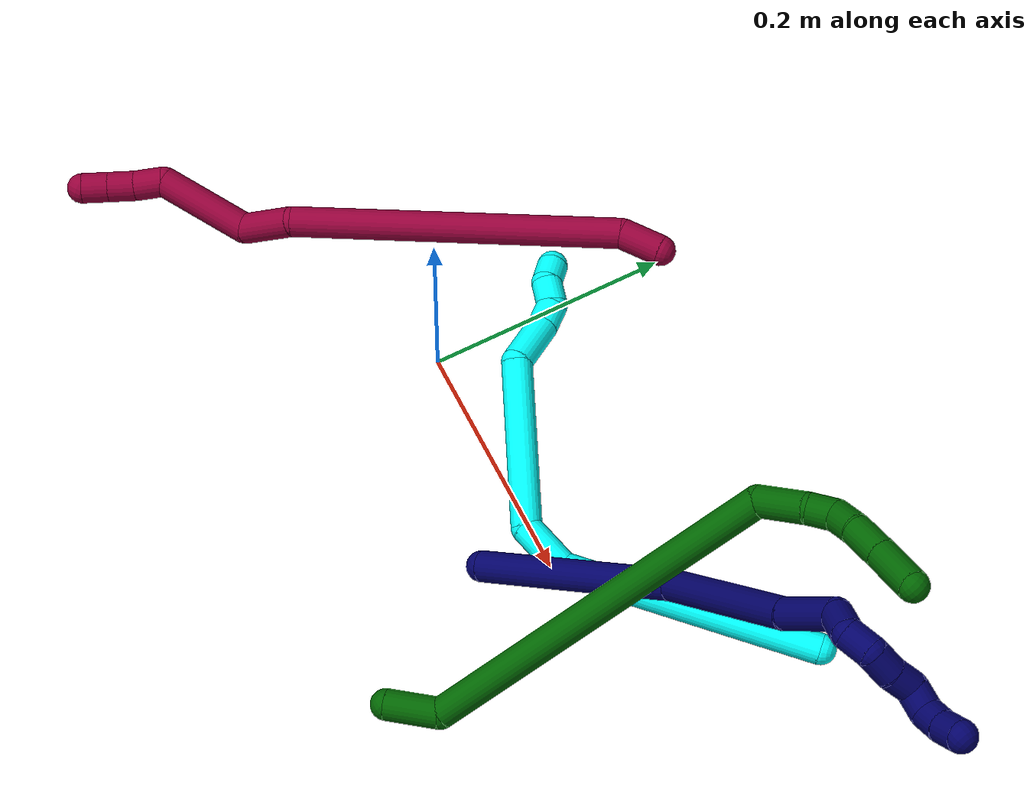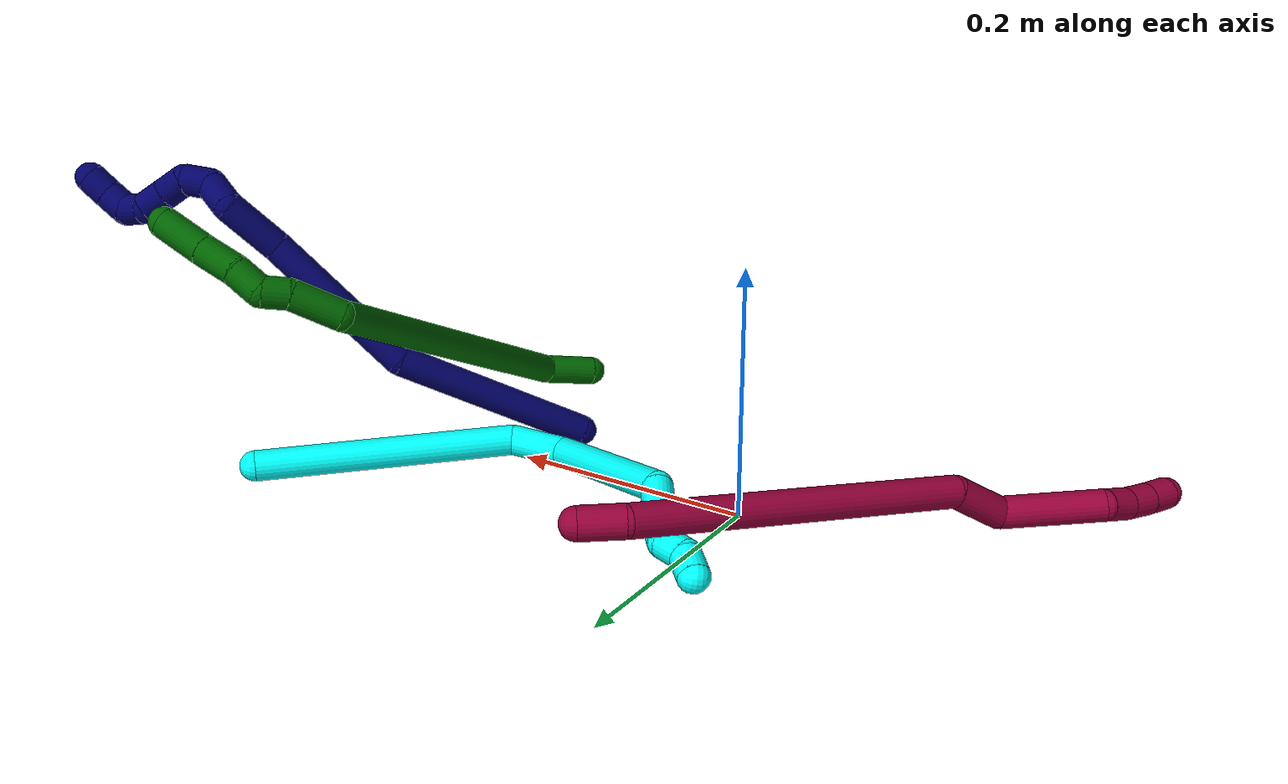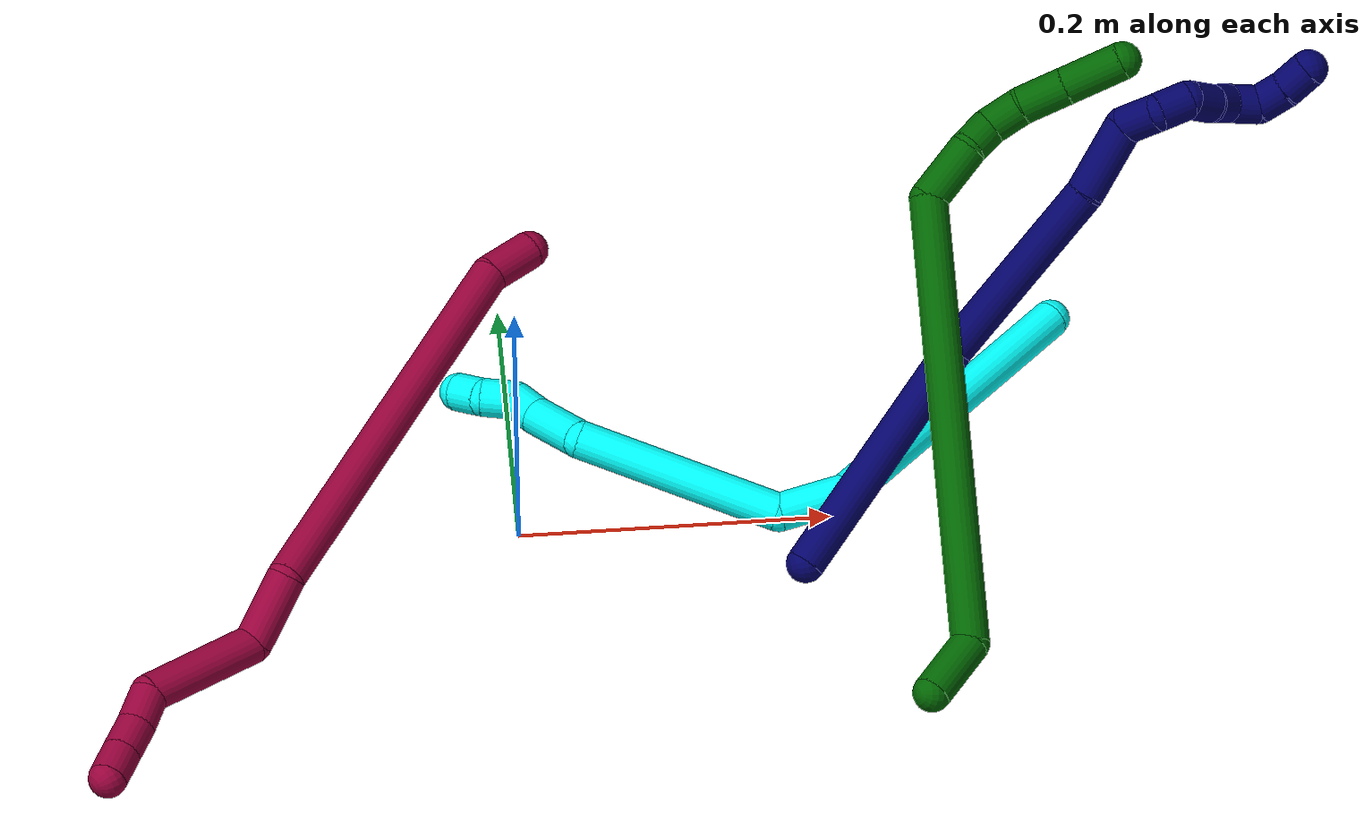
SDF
<sdf version="1.7">
 <world name="default">
  <model name="photoneo_s_sensor">
   <static>1</static>
   <pose>0 0 2 1.57079 1.57079 3.14159</pose>
   <link name="link">
    <inertial><mass>0.1</mass></inertial>
    <sensor name="sensor" type="depth">
     <update_rate>30</update_rate>
     <camera>
      <horizontal_fov>1.22</horizontal_fov>
      <image><width>1920</width><height>1200</height><format>B8G8R8</format></image>
      <clip><near>0.1</near><far>4</far></clip>
      <depth_camera><output>points</output></depth_camera>
     </camera>
     <plugin name="camera_plugin" filename="libgazebo_ros_depth_camera.so">
      <baseline>0.2</baseline>
      <alwaysOn>1</alwaysOn>
      <updateRate>0.0</updateRate>
      <cameraName>camera_ir</cameraName>
      <imageTopicName>/camera/color/image_raw</imageTopicName>
      <cameraInfoTopicName>/camera/color/camera_info</cameraInfoTopicName>
      <depthImageTopicName>/camera/depth/image_raw</depthImageTopicName>
      <depthImageCameraInfoTopicName>/camera/depth/camera_info</depthImageCameraInfoTopicName>
      <pointCloudTopicName>/camera/depth/points</pointCloudTopicName>
      <frameName>fr_optical</frameName>
      <pointCloudCutoff>0.1</pointCloudCutoff>
      <pointCloudCutoffMax>2.0</pointCloudCutoffMax>
      <distortionK1>0</distortionK1>
      <distortionK2>0</distortionK2>
      <distortionK3>0</distortionK3>
      <distortionT1>0</distortionT1>
      <distortionT2>0</distortionT2>
      <CxPrime>0</CxPrime>
      <Cx>0</Cx>
      <Cy>0</Cy>
      <focalLength>0</focalLength>
      <hackBaseline>0</hackBaseline>
     </plugin>
    </sensor>
   </link>
  </model>
  <model name="bin">
   <static>1</static>
   <link name="bottom">
    <collision name="collision-bottom">
     <pose>0 0 -0.01 0 -0 0</pose>
     <geometry><box><size>0.8 0.6 0.02</size></box></geometry>
     <surface>
      <friction><ode><mu>100</mu><mu2>100</mu2></ode></friction>
      <contact><collide_bitmask>65535</collide_bitmask></contact>
     </surface>
    </collision>
   </link>
   <link name="west_wall">
    <collision name="collision-west_wall">
     <pose>-0.41 0 0.1 0 -0 0</pose>
     <geometry><box><size>0.02 0.6 0.2</size></box></geometry>
     <surface>
      <friction><ode><mu>100</mu><mu2>100</mu2></ode></friction>
      <contact><collide_bitmask>65535</collide_bitmask></contact>
     </surface>
    </collision>
   </link>
   <link name="east_wall">
    <collision name="collision-east_wall">
     <pose>0.41 0 0.1 0 -0 0</pose>
     <geometry><box><size>0.02 0.6 0.2</size></box></geometry>
     <surface>
      <friction><ode><mu>100</mu><mu2>100</mu2></ode></friction>
      <contact><collide_bitmask>65535</collide_bitmask></contact>
     </surface>
    </collision>
   </link>
   <link name="south_wall">
    <collision name="collision-south_wall">
     <pose>0 -0.31 0.1 0 -0 0</pose>
     <geometry><box><size>0.8 0.02 0.2</size></box></geometry>
     <surface>
      <friction><ode><mu>100</mu><mu2>100</mu2></ode></friction>
      <contact><collide_bitmask>65535</collide_bitmask></contact>
     </surface>
    </collision>
   </link>
   <link name="north_wall">
    <collision name="collision-north_wall">
     <pose>0 0.31 0.1 0 -0 0</pose>
     <geometry><box><size>0.8 0.02 0.2</size></box></geometry>
     <surface>
      <friction><ode><mu>100</mu><mu2>100</mu2></ode></friction>
      <contact><collide_bitmask>65535</collide_bitmask></contact>
     </surface>
    </collision>
   </link>
  </model>
  <model name="3">
   <static>0</static>
   <link name="3">
    <collision name="collision-cylinder-e_1_1_4">
     <pose>-0.011539 -0.014302 -0.103089 3.00373 -0.110418 -1.35009</pose>
     <geometry><cylinder><radius>0.0125</radius><length>0.209428</length></cylinder></geometry>
     <surface>
      <friction><ode><mu>1.16</mu><mu2>1.16</mu2><slip1>0</slip1><slip2>0</slip2></ode></friction>
      <contact><ode><kp>1e+06</kp><kd>1</kd><max_vel>0</max_vel><min_depth>0.001</min_depth></ode></contact>
     </surface>
    </collision>
    <visual name="visual-cylinder-e_1_1_4">
     <pose>-0.011539 -0.014302 -0.103089 3.00373 -0.110418 -1.35009</pose>
     <geometry><cylinder><radius>0.0125</radius><length>0.209428</length></cylinder></geometry>
     <material><ambient>0.003922 1 0.996078 1</ambient></material>
    </visual>
    <collision name="collision-cylinder-e_2_4_5">
     <pose>-0.03074 -0.02023 -0.225763 -2.73748 -0.345306 1.41049</pose>
     <geometry><cylinder><radius>0.0125</radius><length>0.045272</length></cylinder></geometry>
     <surface>
      <friction><ode><mu>1.16</mu><mu2>1.16</mu2><slip1>0</slip1><slip2>0</slip2></ode></friction>
      <contact><ode><kp>1e+06</kp><kd>1</kd><max_vel>0</max_vel><min_depth>0.001</min_depth></ode></contact>
     </surface>
    </collision>
    <visual name="visual-cylinder-e_2_4_5">
     <pose>-0.03074 -0.02023 -0.225763 -2.73748 -0.345306 1.41049</pose>
     <geometry><cylinder><radius>0.0125</radius><length>0.045272</length></cylinder></geometry>
     <material><ambient>0.003922 1 0.996078 1</ambient></material>
    </visual>
    <collision name="collision-cylinder-e_3_5_6">
     <pose>-0.0882 0.027448 -0.270565 -2.14128 -0.817523 1.34043</pose>
     <geometry><cylinder><radius>0.0125</radius><length>0.136536</length></cylinder></geometry>
     <surface>
      <friction><ode><mu>1.16</mu><mu2>1.16</mu2><slip1>0</slip1><slip2>0</slip2></ode></friction>
      <contact><ode><kp>1e+06</kp><kd>1</kd><max_vel>0</max_vel><min_depth>0.001</min_depth></ode></contact>
     </surface>
    </collision>
    <visual name="visual-cylinder-e_3_5_6">
     <pose>-0.0882 0.027448 -0.270565 -2.14128 -0.817523 1.34043</pose>
     <geometry><cylinder><radius>0.0125</radius><length>0.136536</length></cylinder></geometry>
     <material><ambient>0.003922 1 0.996078 1</ambient></material>
    </visual>
    <collision name="collision-cylinder-e_4_6_7">
     <pose>-0.145554 0.088384 -0.293825 -1.4805 -0.334723 0.306256</pose>
     <geometry><cylinder><radius>0.0125</radius><length>0.045997</length></cylinder></geometry>
     <surface>
      <friction><ode><mu>1.16</mu><mu2>1.16</mu2><slip1>0</slip1><slip2>0</slip2></ode></friction>
      <contact><ode><kp>1e+06</kp><kd>1</kd><max_vel>0</max_vel><min_depth>0.001</min_depth></ode></contact>
     </surface>
    </collision>
    <visual name="visual-cylinder-e_4_6_7">
     <pose>-0.145554 0.088384 -0.293825 -1.4805 -0.334723 0.306256</pose>
     <geometry><cylinder><radius>0.0125</radius><length>0.045997</length></cylinder></geometry>
     <material><ambient>0.003922 1 0.996078 1</ambient></material>
    </visual>
    <collision name="collision-cylinder-e_5_7_8">
     <pose>-0.15924 0.118027 -0.291442 -1.51782 -0.652643 0.621129</pose>
     <geometry><cylinder><radius>0.0125</radius><length>0.020192</length></cylinder></geometry>
     <surface>
      <friction><ode><mu>1.16</mu><mu2>1.16</mu2><slip1>0</slip1><slip2>0</slip2></ode></friction>
      <contact><ode><kp>1e+06</kp><kd>1</kd><max_vel>0</max_vel><min_depth>0.001</min_depth></ode></contact>
     </surface>
    </collision>
    <visual name="visual-cylinder-e_5_7_8">
     <pose>-0.15924 0.118027 -0.291442 -1.51782 -0.652643 0.621129</pose>
     <geometry><cylinder><radius>0.0125</radius><length>0.020192</length></cylinder></geometry>
     <material><ambient>0.003922 1 0.996078 1</ambient></material>
    </visual>
    <collision name="collision-cylinder-e_6_8_9">
     <pose>-0.17115 0.133122 -0.296772 -2.25296 -0.564395 1.09405</pose>
     <geometry><cylinder><radius>0.0125</radius><length>0.021606</length></cylinder></geometry>
     <surface>
      <friction><ode><mu>1.16</mu><mu2>1.16</mu2><slip1>0</slip1><slip2>0</slip2></ode></friction>
      <contact><ode><kp>1e+06</kp><kd>1</kd><max_vel>0</max_vel><min_depth>0.001</min_depth></ode></contact>
     </surface>
    </collision>
    <visual name="visual-cylinder-e_6_8_9">
     <pose>-0.17115 0.133122 -0.296772 -2.25296 -0.564395 1.09405</pose>
     <geometry><cylinder><radius>0.0125</radius><length>0.021606</length></cylinder></geometry>
     <material><ambient>0.003922 1 0.996078 1</ambient></material>
    </visual>
    <collision name="collision-cylinder-e_7_9_2">
     <pose>-0.180256 0.150011 -0.304177 -1.73756 -0.323005 0.380613</pose>
     <geometry><cylinder><radius>0.0125</radius><length>0.020968</length></cylinder></geometry>
     <surface>
      <friction><ode><mu>1.16</mu><mu2>1.16</mu2><slip1>0</slip1><slip2>0</slip2></ode></friction>
      <contact><ode><kp>1e+06</kp><kd>1</kd><max_vel>0</max_vel><min_depth>0.001</min_depth></ode></contact>
     </surface>
    </collision>
    <visual name="visual-cylinder-e_7_9_2">
     <pose>-0.180256 0.150011 -0.304177 -1.73756 -0.323005 0.380613</pose>
     <geometry><cylinder><radius>0.0125</radius><length>0.020968</length></cylinder></geometry>
     <material><ambient>0.003922 1 0.996078 1</ambient></material>
    </visual>
    <collision name="collision-sphere-2">
     <pose>-0.183584 0.159815 -0.305827 0 -0 0</pose>
     <geometry><sphere><radius>0.0125</radius></sphere></geometry>
     <surface>
      <friction><ode><mu>1.16</mu><mu2>1.16</mu2><slip1>0</slip1><slip2>0</slip2></ode></friction>
      <contact><ode><kp>1e+06</kp><kd>1</kd><max_vel>0</max_vel><min_depth>0.001</min_depth></ode></contact>
     </surface>
    </collision>
    <visual name="visual-sphere-2">
     <pose>-0.183584 0.159815 -0.305827 0 -0 0</pose>
     <geometry><sphere><radius>0.0125</radius></sphere></geometry>
     <material><ambient>0.003922 1 0.996078 1</ambient></material>
    </visual>
    <collision name="collision-sphere-9">
     <pose>-0.176929 0.140207 -0.302526 0 -0 0</pose>
     <geometry><sphere><radius>0.0125</radius></sphere></geometry>
     <surface>
      <friction><ode><mu>1.16</mu><mu2>1.16</mu2><slip1>0</slip1><slip2>0</slip2></ode></friction>
      <contact><ode><kp>1e+06</kp><kd>1</kd><max_vel>0</max_vel><min_depth>0.001</min_depth></ode></contact>
     </surface>
    </collision>
    <visual name="visual-sphere-9">
     <pose>-0.176929 0.140207 -0.302526 0 -0 0</pose>
     <geometry><sphere><radius>0.0125</radius></sphere></geometry>
     <material><ambient>0.003922 1 0.996078 1</ambient></material>
    </visual>
    <collision name="collision-sphere-4">
     <pose>-0.023078 -0.028605 -0.206178 0 -0 0</pose>
     <geometry><sphere><radius>0.0125</radius></sphere></geometry>
     <surface>
      <friction><ode><mu>1.16</mu><mu2>1.16</mu2><slip1>0</slip1><slip2>0</slip2></ode></friction>
      <contact><ode><kp>1e+06</kp><kd>1</kd><max_vel>0</max_vel><min_depth>0.001</min_depth></ode></contact>
     </surface>
    </collision>
    <visual name="visual-sphere-4">
     <pose>-0.023078 -0.028605 -0.206178 0 -0 0</pose>
     <geometry><sphere><radius>0.0125</radius></sphere></geometry>
     <material><ambient>0.003922 1 0.996078 1</ambient></material>
    </visual>
    <collision name="collision-sphere-1">
     <geometry><sphere><radius>0.0125</radius></sphere></geometry>
     <surface>
      <friction><ode><mu>1.16</mu><mu2>1.16</mu2><slip1>0</slip1><slip2>0</slip2></ode></friction>
      <contact><ode><kp>1e+06</kp><kd>1</kd><max_vel>0</max_vel><min_depth>0.001</min_depth></ode></contact>
     </surface>
    </collision>
    <visual name="visual-sphere-1">
     <geometry><sphere><radius>0.0125</radius></sphere></geometry>
     <material><ambient>0.003922 1 0.996078 1</ambient></material>
    </visual>
    <collision name="collision-sphere-8">
     <pose>-0.165371 0.126037 -0.291017 0 -0 0</pose>
     <geometry><sphere><radius>0.0125</radius></sphere></geometry>
     <surface>
      <friction><ode><mu>1.16</mu><mu2>1.16</mu2><slip1>0</slip1><slip2>0</slip2></ode></friction>
      <contact><ode><kp>1e+06</kp><kd>1</kd><max_vel>0</max_vel><min_depth>0.001</min_depth></ode></contact>
     </surface>
    </collision>
    <visual name="visual-sphere-8">
     <pose>-0.165371 0.126037 -0.291017 0 -0 0</pose>
     <geometry><sphere><radius>0.0125</radius></sphere></geometry>
     <material><ambient>0.003922 1 0.996078 1</ambient></material>
    </visual>
    <collision name="collision-sphere-5">
     <pose>-0.038402 -0.011854 -0.245347 0 -0 0</pose>
     <geometry><sphere><radius>0.0125</radius></sphere></geometry>
     <surface>
      <friction><ode><mu>1.16</mu><mu2>1.16</mu2><slip1>0</slip1><slip2>0</slip2></ode></friction>
      <contact><ode><kp>1e+06</kp><kd>1</kd><max_vel>0</max_vel><min_depth>0.001</min_depth></ode></contact>
     </surface>
    </collision>
    <visual name="visual-sphere-5">
     <pose>-0.038402 -0.011854 -0.245347 0 -0 0</pose>
     <geometry><sphere><radius>0.0125</radius></sphere></geometry>
     <material><ambient>0.003922 1 0.996078 1</ambient></material>
    </visual>
    <collision name="collision-sphere-6">
     <pose>-0.137999 0.06675 -0.295784 0 -0 0</pose>
     <geometry><sphere><radius>0.0125</radius></sphere></geometry>
     <surface>
      <friction><ode><mu>1.16</mu><mu2>1.16</mu2><slip1>0</slip1><slip2>0</slip2></ode></friction>
      <contact><ode><kp>1e+06</kp><kd>1</kd><max_vel>0</max_vel><min_depth>0.001</min_depth></ode></contact>
     </surface>
    </collision>
    <visual name="visual-sphere-6">
     <pose>-0.137999 0.06675 -0.295784 0 -0 0</pose>
     <geometry><sphere><radius>0.0125</radius></sphere></geometry>
     <material><ambient>0.003922 1 0.996078 1</ambient></material>
    </visual>
    <collision name="collision-sphere-7">
     <pose>-0.153109 0.110017 -0.291867 0 -0 0</pose>
     <geometry><sphere><radius>0.0125</radius></sphere></geometry>
     <surface>
      <friction><ode><mu>1.16</mu><mu2>1.16</mu2><slip1>0</slip1><slip2>0</slip2></ode></friction>
      <contact><ode><kp>1e+06</kp><kd>1</kd><max_vel>0</max_vel><min_depth>0.001</min_depth></ode></contact>
     </surface>
    </collision>
    <visual name="visual-sphere-7">
     <pose>-0.153109 0.110017 -0.291867 0 -0 0</pose>
     <geometry><sphere><radius>0.0125</radius></sphere></geometry>
     <material><ambient>0.003922 1 0.996078 1</ambient></material>
    </visual>
    <inertial>
     <pose>-0.066477 0.024613 -0.201885 0 -0 0</pose>
     <mass>0.5</mass>
     <inertia>
      <ixx>-0.00039</ixx>
      <ixy>0</ixy>
      <ixz>0</ixz>
      <iyy>-0.00063</iyy>
      <iyz>0</iyz>
      <izz>0.000193</izz>
     </inertia>
    </inertial>
   </link>
   <pose>0.358976 0.152983 0.011843 -1.32379 0.895412 -0.634812</pose>
  </model>
  <model name="6">
   <static>0</static>
   <link name="6">
    <collision name="collision-cylinder-e_1_1_4">
     <pose>-0.013153 0.006926 -0.0159 -2.7308 -0.648843 2.03235</pose>
     <geometry><cylinder><radius>0.0125</radius><length>0.043533</length></cylinder></geometry>
     <surface>
      <friction><ode><mu>1.16</mu><mu2>1.16</mu2><slip1>0</slip1><slip2>0</slip2></ode></friction>
      <contact><ode><kp>1e+06</kp><kd>1</kd><max_vel>0</max_vel><min_depth>0.001</min_depth></ode></contact>
     </surface>
    </collision>
    <visual name="visual-cylinder-e_1_1_4">
     <pose>-0.013153 0.006926 -0.0159 -2.7308 -0.648843 2.03235</pose>
     <geometry><cylinder><radius>0.0125</radius><length>0.043533</length></cylinder></geometry>
     <material><ambient>0 0.392157 0.003922 1</ambient></material>
    </visual>
    <collision name="collision-cylinder-e_2_4_5">
     <pose>-0.169923 0.0456 -0.051151 -2.11815 -1.31747 1.88627</pose>
     <geometry><cylinder><radius>0.0125</radius><length>0.296703</length></cylinder></geometry>
     <surface>
      <friction><ode><mu>1.16</mu><mu2>1.16</mu2><slip1>0</slip1><slip2>0</slip2></ode></friction>
      <contact><ode><kp>1e+06</kp><kd>1</kd><max_vel>0</max_vel><min_depth>0.001</min_depth></ode></contact>
     </surface>
    </collision>
    <visual name="visual-cylinder-e_2_4_5">
     <pose>-0.169923 0.0456 -0.051151 -2.11815 -1.31747 1.88627</pose>
     <geometry><cylinder><radius>0.0125</radius><length>0.296703</length></cylinder></geometry>
     <material><ambient>0 0.392157 0.003922 1</ambient></material>
    </visual>
    <collision name="collision-cylinder-e_3_5_6">
     <pose>-0.324779 0.090335 -0.082514 -2.31732 -0.565957 1.17389</pose>
     <geometry><cylinder><radius>0.0125</radius><length>0.041919</length></cylinder></geometry>
     <surface>
      <friction><ode><mu>1.16</mu><mu2>1.16</mu2><slip1>0</slip1><slip2>0</slip2></ode></friction>
      <contact><ode><kp>1e+06</kp><kd>1</kd><max_vel>0</max_vel><min_depth>0.001</min_depth></ode></contact>
     </surface>
    </collision>
    <visual name="visual-cylinder-e_3_5_6">
     <pose>-0.324779 0.090335 -0.082514 -2.31732 -0.565957 1.17389</pose>
     <geometry><cylinder><radius>0.0125</radius><length>0.041919</length></cylinder></geometry>
     <material><ambient>0 0.392157 0.003922 1</ambient></material>
    </visual>
    <collision name="collision-cylinder-e_4_6_7">
     <pose>-0.341745 0.10727 -0.102854 -2.69878 -0.556155 1.80622</pose>
     <geometry><cylinder><radius>0.0125</radius><length>0.021699</length></cylinder></geometry>
     <surface>
      <friction><ode><mu>1.16</mu><mu2>1.16</mu2><slip1>0</slip1><slip2>0</slip2></ode></friction>
      <contact><ode><kp>1e+06</kp><kd>1</kd><max_vel>0</max_vel><min_depth>0.001</min_depth></ode></contact>
     </surface>
    </collision>
    <visual name="visual-cylinder-e_4_6_7">
     <pose>-0.341745 0.10727 -0.102854 -2.69878 -0.556155 1.80622</pose>
     <geometry><cylinder><radius>0.0125</radius><length>0.021699</length></cylinder></geometry>
     <material><ambient>0 0.392157 0.003922 1</ambient></material>
    </visual>
    <collision name="collision-cylinder-e_5_7_8">
     <pose>-0.348818 0.122048 -0.117383 -2.09098 -0.107389 0.184921</pose>
     <geometry><cylinder><radius>0.0125</radius><length>0.025106</length></cylinder></geometry>
     <surface>
      <friction><ode><mu>1.16</mu><mu2>1.16</mu2><slip1>0</slip1><slip2>0</slip2></ode></friction>
      <contact><ode><kp>1e+06</kp><kd>1</kd><max_vel>0</max_vel><min_depth>0.001</min_depth></ode></contact>
     </surface>
    </collision>
    <visual name="visual-cylinder-e_5_7_8">
     <pose>-0.348818 0.122048 -0.117383 -2.09098 -0.107389 0.184921</pose>
     <geometry><cylinder><radius>0.0125</radius><length>0.025106</length></cylinder></geometry>
     <material><ambient>0 0.392157 0.003922 1</ambient></material>
    </visual>
    <collision name="collision-cylinder-e_6_8_9">
     <pose>-0.35043 0.144855 -0.133541 -2.26423 -0.017072 0.036385</pose>
     <geometry><cylinder><radius>0.0125</radius><length>0.031152</length></cylinder></geometry>
     <surface>
      <friction><ode><mu>1.16</mu><mu2>1.16</mu2><slip1>0</slip1><slip2>0</slip2></ode></friction>
      <contact><ode><kp>1e+06</kp><kd>1</kd><max_vel>0</max_vel><min_depth>0.001</min_depth></ode></contact>
     </surface>
    </collision>
    <visual name="visual-cylinder-e_6_8_9">
     <pose>-0.35043 0.144855 -0.133541 -2.26423 -0.017072 0.036385</pose>
     <geometry><cylinder><radius>0.0125</radius><length>0.031152</length></cylinder></geometry>
     <material><ambient>0 0.392157 0.003922 1</ambient></material>
    </visual>
    <collision name="collision-cylinder-e_7_9_2">
     <pose>-0.350626 0.172711 -0.155562 -2.22064 0.003488 -0.007032</pose>
     <geometry><cylinder><radius>0.0125</radius><length>0.039888</length></cylinder></geometry>
     <surface>
      <friction><ode><mu>1.16</mu><mu2>1.16</mu2><slip1>0</slip1><slip2>0</slip2></ode></friction>
      <contact><ode><kp>1e+06</kp><kd>1</kd><max_vel>0</max_vel><min_depth>0.001</min_depth></ode></contact>
     </surface>
    </collision>
    <visual name="visual-cylinder-e_7_9_2">
     <pose>-0.350626 0.172711 -0.155562 -2.22064 0.003488 -0.007032</pose>
     <geometry><cylinder><radius>0.0125</radius><length>0.039888</length></cylinder></geometry>
     <material><ambient>0 0.392157 0.003922 1</ambient></material>
    </visual>
    <collision name="collision-sphere-2">
     <pose>-0.350556 0.18859 -0.167629 0 -0 0</pose>
     <geometry><sphere><radius>0.0125</radius></sphere></geometry>
     <surface>
      <friction><ode><mu>1.16</mu><mu2>1.16</mu2><slip1>0</slip1><slip2>0</slip2></ode></friction>
      <contact><ode><kp>1e+06</kp><kd>1</kd><max_vel>0</max_vel><min_depth>0.001</min_depth></ode></contact>
     </surface>
    </collision>
    <visual name="visual-sphere-2">
     <pose>-0.350556 0.18859 -0.167629 0 -0 0</pose>
     <geometry><sphere><radius>0.0125</radius></sphere></geometry>
     <material><ambient>0 0.392157 0.003922 1</ambient></material>
    </visual>
    <collision name="collision-sphere-9">
     <pose>-0.350696 0.156832 -0.143495 0 -0 0</pose>
     <geometry><sphere><radius>0.0125</radius></sphere></geometry>
     <surface>
      <friction><ode><mu>1.16</mu><mu2>1.16</mu2><slip1>0</slip1><slip2>0</slip2></ode></friction>
      <contact><ode><kp>1e+06</kp><kd>1</kd><max_vel>0</max_vel><min_depth>0.001</min_depth></ode></contact>
     </surface>
    </collision>
    <visual name="visual-sphere-9">
     <pose>-0.350696 0.156832 -0.143495 0 -0 0</pose>
     <geometry><sphere><radius>0.0125</radius></sphere></geometry>
     <material><ambient>0 0.392157 0.003922 1</ambient></material>
    </visual>
    <collision name="collision-sphere-4">
     <pose>-0.026306 0.013852 -0.031801 0 -0 0</pose>
     <geometry><sphere><radius>0.0125</radius></sphere></geometry>
     <surface>
      <friction><ode><mu>1.16</mu><mu2>1.16</mu2><slip1>0</slip1><slip2>0</slip2></ode></friction>
      <contact><ode><kp>1e+06</kp><kd>1</kd><max_vel>0</max_vel><min_depth>0.001</min_depth></ode></contact>
     </surface>
    </collision>
    <visual name="visual-sphere-4">
     <pose>-0.026306 0.013852 -0.031801 0 -0 0</pose>
     <geometry><sphere><radius>0.0125</radius></sphere></geometry>
     <material><ambient>0 0.392157 0.003922 1</ambient></material>
    </visual>
    <collision name="collision-sphere-1">
     <geometry><sphere><radius>0.0125</radius></sphere></geometry>
     <surface>
      <friction><ode><mu>1.16</mu><mu2>1.16</mu2><slip1>0</slip1><slip2>0</slip2></ode></friction>
      <contact><ode><kp>1e+06</kp><kd>1</kd><max_vel>0</max_vel><min_depth>0.001</min_depth></ode></contact>
     </surface>
    </collision>
    <visual name="visual-sphere-1">
     <geometry><sphere><radius>0.0125</radius></sphere></geometry>
     <material><ambient>0 0.392157 0.003922 1</ambient></material>
    </visual>
    <collision name="collision-sphere-8">
     <pose>-0.350164 0.132878 -0.123586 0 -0 0</pose>
     <geometry><sphere><radius>0.0125</radius></sphere></geometry>
     <surface>
      <friction><ode><mu>1.16</mu><mu2>1.16</mu2><slip1>0</slip1><slip2>0</slip2></ode></friction>
      <contact><ode><kp>1e+06</kp><kd>1</kd><max_vel>0</max_vel><min_depth>0.001</min_depth></ode></contact>
     </surface>
    </collision>
    <visual name="visual-sphere-8">
     <pose>-0.350164 0.132878 -0.123586 0 -0 0</pose>
     <geometry><sphere><radius>0.0125</radius></sphere></geometry>
     <material><ambient>0 0.392157 0.003922 1</ambient></material>
    </visual>
    <collision name="collision-sphere-5">
     <pose>-0.31354 0.077349 -0.0705 0 -0 0</pose>
     <geometry><sphere><radius>0.0125</radius></sphere></geometry>
     <surface>
      <friction><ode><mu>1.16</mu><mu2>1.16</mu2><slip1>0</slip1><slip2>0</slip2></ode></friction>
      <contact><ode><kp>1e+06</kp><kd>1</kd><max_vel>0</max_vel><min_depth>0.001</min_depth></ode></contact>
     </surface>
    </collision>
    <visual name="visual-sphere-5">
     <pose>-0.31354 0.077349 -0.0705 0 -0 0</pose>
     <geometry><sphere><radius>0.0125</radius></sphere></geometry>
     <material><ambient>0 0.392157 0.003922 1</ambient></material>
    </visual>
    <collision name="collision-sphere-6">
     <pose>-0.336018 0.103322 -0.094528 0 -0 0</pose>
     <geometry><sphere><radius>0.0125</radius></sphere></geometry>
     <surface>
      <friction><ode><mu>1.16</mu><mu2>1.16</mu2><slip1>0</slip1><slip2>0</slip2></ode></friction>
      <contact><ode><kp>1e+06</kp><kd>1</kd><max_vel>0</max_vel><min_depth>0.001</min_depth></ode></contact>
     </surface>
    </collision>
    <visual name="visual-sphere-6">
     <pose>-0.336018 0.103322 -0.094528 0 -0 0</pose>
     <geometry><sphere><radius>0.0125</radius></sphere></geometry>
     <material><ambient>0 0.392157 0.003922 1</ambient></material>
    </visual>
    <collision name="collision-sphere-7">
     <pose>-0.347473 0.111218 -0.111179 0 -0 0</pose>
     <geometry><sphere><radius>0.0125</radius></sphere></geometry>
     <surface>
      <friction><ode><mu>1.16</mu><mu2>1.16</mu2><slip1>0</slip1><slip2>0</slip2></ode></friction>
      <contact><ode><kp>1e+06</kp><kd>1</kd><max_vel>0</max_vel><min_depth>0.001</min_depth></ode></contact>
     </surface>
    </collision>
    <visual name="visual-sphere-7">
     <pose>-0.347473 0.111218 -0.111179 0 -0 0</pose>
     <geometry><sphere><radius>0.0125</radius></sphere></geometry>
     <material><ambient>0 0.392157 0.003922 1</ambient></material>
    </visual>
    <inertial>
     <pose>-0.211357 0.068823 -0.069743 0 -0 0</pose>
     <mass>0.5</mass>
     <inertia>
      <ixx>0.00035</ixx>
      <ixy>0</ixy>
      <ixz>0</ixz>
      <iyy>0.002622</iyy>
      <iyz>0</iyz>
      <izz>0.001629</izz>
     </inertia>
    </inertial>
   </link>
   <pose>0.248274 -0.167463 0.012045 1.10275 0.334597 -1.32546</pose>
  </model>
  <model name="7">
   <static>0</static>
   <link name="7">
    <collision name="collision-cylinder-e_1_1_4">
     <pose>-0.001615 -0.055939 -0.062863 2.4144 -0.019185 -0.050409</pose>
     <geometry><cylinder><radius>0.0125</radius><length>0.168328</length></cylinder></geometry>
     <surface>
      <friction><ode><mu>1.16</mu><mu2>1.16</mu2><slip1>0</slip1><slip2>0</slip2></ode></friction>
      <contact><ode><kp>1e+06</kp><kd>1</kd><max_vel>0</max_vel><min_depth>0.001</min_depth></ode></contact>
     </surface>
    </collision>
    <visual name="visual-cylinder-e_1_1_4">
     <pose>-0.001615 -0.055939 -0.062863 2.4144 -0.019185 -0.050409</pose>
     <geometry><cylinder><radius>0.0125</radius><length>0.168328</length></cylinder></geometry>
     <material><ambient>0.003922 0 0.403922 1</ambient></material>
    </visual>
    <collision name="collision-cylinder-e_2_4_5">
     <pose>-0.030638 -0.148406 -0.174054 2.49439 -0.424878 -1.14303</pose>
     <geometry><cylinder><radius>0.0125</radius><length>0.132983</length></cylinder></geometry>
     <surface>
      <friction><ode><mu>1.16</mu><mu2>1.16</mu2><slip1>0</slip1><slip2>0</slip2></ode></friction>
      <contact><ode><kp>1e+06</kp><kd>1</kd><max_vel>0</max_vel><min_depth>0.001</min_depth></ode></contact>
     </surface>
    </collision>
    <visual name="visual-cylinder-e_2_4_5">
     <pose>-0.030638 -0.148406 -0.174054 2.49439 -0.424878 -1.14303</pose>
     <geometry><cylinder><radius>0.0125</radius><length>0.132983</length></cylinder></geometry>
     <material><ambient>0.003922 0 0.403922 1</ambient></material>
    </visual>
    <collision name="collision-cylinder-e_3_5_6">
     <pose>-0.065705 -0.202216 -0.238343 2.31641 -0.314767 -0.695634</pose>
     <geometry><cylinder><radius>0.0125</radius><length>0.04948</length></cylinder></geometry>
     <surface>
      <friction><ode><mu>1.16</mu><mu2>1.16</mu2><slip1>0</slip1><slip2>0</slip2></ode></friction>
      <contact><ode><kp>1e+06</kp><kd>1</kd><max_vel>0</max_vel><min_depth>0.001</min_depth></ode></contact>
     </surface>
    </collision>
    <visual name="visual-cylinder-e_3_5_6">
     <pose>-0.065705 -0.202216 -0.238343 2.31641 -0.314767 -0.695634</pose>
     <geometry><cylinder><radius>0.0125</radius><length>0.04948</length></cylinder></geometry>
     <material><ambient>0.003922 0 0.403922 1</ambient></material>
    </visual>
    <collision name="collision-cylinder-e_4_6_7">
     <pose>-0.080666 -0.220362 -0.26429 3.05539 -0.62949 -2.8782</pose>
     <geometry><cylinder><radius>0.0125</radius><length>0.024803</length></cylinder></geometry>
     <surface>
      <friction><ode><mu>1.16</mu><mu2>1.16</mu2><slip1>0</slip1><slip2>0</slip2></ode></friction>
      <contact><ode><kp>1e+06</kp><kd>1</kd><max_vel>0</max_vel><min_depth>0.001</min_depth></ode></contact>
     </surface>
    </collision>
    <visual name="visual-cylinder-e_4_6_7">
     <pose>-0.080666 -0.220362 -0.26429 3.05539 -0.62949 -2.8782</pose>
     <geometry><cylinder><radius>0.0125</radius><length>0.024803</length></cylinder></geometry>
     <material><ambient>0.003922 0 0.403922 1</ambient></material>
    </visual>
    <collision name="collision-cylinder-e_5_7_8">
     <pose>-0.087295 -0.223117 -0.285103 2.96855 0.061067 0.677127</pose>
     <geometry><cylinder><radius>0.0125</radius><length>0.022023</length></cylinder></geometry>
     <surface>
      <friction><ode><mu>1.16</mu><mu2>1.16</mu2><slip1>0</slip1><slip2>0</slip2></ode></friction>
      <contact><ode><kp>1e+06</kp><kd>1</kd><max_vel>0</max_vel><min_depth>0.001</min_depth></ode></contact>
     </surface>
    </collision>
    <visual name="visual-cylinder-e_5_7_8">
     <pose>-0.087295 -0.223117 -0.285103 2.96855 0.061067 0.677127</pose>
     <geometry><cylinder><radius>0.0125</radius><length>0.022023</length></cylinder></geometry>
     <material><ambient>0.003922 0 0.403922 1</ambient></material>
    </visual>
    <collision name="collision-cylinder-e_6_8_9">
     <pose>-0.079919 -0.223055 -0.304096 -2.90661 0.673737 -2.49144</pose>
     <geometry><cylinder><radius>0.0125</radius><length>0.021489</length></cylinder></geometry>
     <surface>
      <friction><ode><mu>1.16</mu><mu2>1.16</mu2><slip1>0</slip1><slip2>0</slip2></ode></friction>
      <contact><ode><kp>1e+06</kp><kd>1</kd><max_vel>0</max_vel><min_depth>0.001</min_depth></ode></contact>
     </surface>
    </collision>
    <visual name="visual-cylinder-e_6_8_9">
     <pose>-0.079919 -0.223055 -0.304096 -2.90661 0.673737 -2.49144</pose>
     <geometry><cylinder><radius>0.0125</radius><length>0.021489</length></cylinder></geometry>
     <material><ambient>0.003922 0 0.403922 1</ambient></material>
    </visual>
    <collision name="collision-cylinder-e_7_9_10">
     <pose>-0.065732 -0.220808 -0.319507 -3.10131 0.80122 -3.04653</pose>
     <geometry><cylinder><radius>0.0125</radius><length>0.020839</length></cylinder></geometry>
     <surface>
      <friction><ode><mu>1.16</mu><mu2>1.16</mu2><slip1>0</slip1><slip2>0</slip2></ode></friction>
      <contact><ode><kp>1e+06</kp><kd>1</kd><max_vel>0</max_vel><min_depth>0.001</min_depth></ode></contact>
     </surface>
    </collision>
    <visual name="visual-cylinder-e_7_9_10">
     <pose>-0.065732 -0.220808 -0.319507 -3.10131 0.80122 -3.04653</pose>
     <geometry><cylinder><radius>0.0125</radius><length>0.020839</length></cylinder></geometry>
     <material><ambient>0.003922 0 0.403922 1</ambient></material>
    </visual>
    <collision name="collision-cylinder-e_8_10_11">
     <pose>-0.056945 -0.218122 -0.336399 -2.89843 0.130392 -0.981487</pose>
     <geometry><cylinder><radius>0.0125</radius><length>0.020052</length></cylinder></geometry>
     <surface>
      <friction><ode><mu>1.16</mu><mu2>1.16</mu2><slip1>0</slip1><slip2>0</slip2></ode></friction>
      <contact><ode><kp>1e+06</kp><kd>1</kd><max_vel>0</max_vel><min_depth>0.001</min_depth></ode></contact>
     </surface>
    </collision>
    <visual name="visual-cylinder-e_8_10_11">
     <pose>-0.056945 -0.218122 -0.336399 -2.89843 0.130392 -0.981487</pose>
     <geometry><cylinder><radius>0.0125</radius><length>0.020052</length></cylinder></geometry>
     <material><ambient>0.003922 0 0.403922 1</ambient></material>
    </visual>
    <collision name="collision-cylinder-e_9_11_12">
     <pose>-0.059923 -0.218297 -0.354714 2.85344 -0.442372 -1.99563</pose>
     <geometry><cylinder><radius>0.0125</radius><length>0.020002</length></cylinder></geometry>
     <surface>
      <friction><ode><mu>1.16</mu><mu2>1.16</mu2><slip1>0</slip1><slip2>0</slip2></ode></friction>
      <contact><ode><kp>1e+06</kp><kd>1</kd><max_vel>0</max_vel><min_depth>0.001</min_depth></ode></contact>
     </surface>
    </collision>
    <visual name="visual-cylinder-e_9_11_12">
     <pose>-0.059923 -0.218297 -0.354714 2.85344 -0.442372 -1.99563</pose>
     <geometry><cylinder><radius>0.0125</radius><length>0.020002</length></cylinder></geometry>
     <material><ambient>0.003922 0 0.403922 1</ambient></material>
    </visual>
    <collision name="collision-cylinder-e_10_12_2">
     <pose>-0.068536 -0.224958 -0.371411 2.67037 -0.44793 -1.51831</pose>
     <geometry><cylinder><radius>0.0125</radius><length>0.020001</length></cylinder></geometry>
     <surface>
      <friction><ode><mu>1.16</mu><mu2>1.16</mu2><slip1>0</slip1><slip2>0</slip2></ode></friction>
      <contact><ode><kp>1e+06</kp><kd>1</kd><max_vel>0</max_vel><min_depth>0.001</min_depth></ode></contact>
     </surface>
    </collision>
    <visual name="visual-cylinder-e_10_12_2">
     <pose>-0.068536 -0.224958 -0.371411 2.67037 -0.44793 -1.51831</pose>
     <geometry><cylinder><radius>0.0125</radius><length>0.020001</length></cylinder></geometry>
     <material><ambient>0.003922 0 0.403922 1</ambient></material>
    </visual>
    <collision name="collision-sphere-2">
     <pose>-0.072867 -0.22905 -0.379443 0 -0 0</pose>
     <geometry><sphere><radius>0.0125</radius></sphere></geometry>
     <surface>
      <friction><ode><mu>1.16</mu><mu2>1.16</mu2><slip1>0</slip1><slip2>0</slip2></ode></friction>
      <contact><ode><kp>1e+06</kp><kd>1</kd><max_vel>0</max_vel><min_depth>0.001</min_depth></ode></contact>
     </surface>
    </collision>
    <visual name="visual-sphere-2">
     <pose>-0.072867 -0.22905 -0.379443 0 -0 0</pose>
     <geometry><sphere><radius>0.0125</radius></sphere></geometry>
     <material><ambient>0.003922 0 0.403922 1</ambient></material>
    </visual>
    <collision name="collision-sphere-12">
     <pose>-0.064204 -0.220866 -0.363379 0 -0 0</pose>
     <geometry><sphere><radius>0.0125</radius></sphere></geometry>
     <surface>
      <friction><ode><mu>1.16</mu><mu2>1.16</mu2><slip1>0</slip1><slip2>0</slip2></ode></friction>
      <contact><ode><kp>1e+06</kp><kd>1</kd><max_vel>0</max_vel><min_depth>0.001</min_depth></ode></contact>
     </surface>
    </collision>
    <visual name="visual-sphere-12">
     <pose>-0.064204 -0.220866 -0.363379 0 -0 0</pose>
     <geometry><sphere><radius>0.0125</radius></sphere></geometry>
     <material><ambient>0.003922 0 0.403922 1</ambient></material>
    </visual>
    <collision name="collision-sphere-11">
     <pose>-0.055642 -0.215729 -0.346048 0 -0 0</pose>
     <geometry><sphere><radius>0.0125</radius></sphere></geometry>
     <surface>
      <friction><ode><mu>1.16</mu><mu2>1.16</mu2><slip1>0</slip1><slip2>0</slip2></ode></friction>
      <contact><ode><kp>1e+06</kp><kd>1</kd><max_vel>0</max_vel><min_depth>0.001</min_depth></ode></contact>
     </surface>
    </collision>
    <visual name="visual-sphere-11">
     <pose>-0.055642 -0.215729 -0.346048 0 -0 0</pose>
     <geometry><sphere><radius>0.0125</radius></sphere></geometry>
     <material><ambient>0.003922 0 0.403922 1</ambient></material>
    </visual>
    <collision name="collision-sphere-10">
     <pose>-0.058249 -0.220516 -0.326751 0 -0 0</pose>
     <geometry><sphere><radius>0.0125</radius></sphere></geometry>
     <surface>
      <friction><ode><mu>1.16</mu><mu2>1.16</mu2><slip1>0</slip1><slip2>0</slip2></ode></friction>
      <contact><ode><kp>1e+06</kp><kd>1</kd><max_vel>0</max_vel><min_depth>0.001</min_depth></ode></contact>
     </surface>
    </collision>
    <visual name="visual-sphere-10">
     <pose>-0.058249 -0.220516 -0.326751 0 -0 0</pose>
     <geometry><sphere><radius>0.0125</radius></sphere></geometry>
     <material><ambient>0.003922 0 0.403922 1</ambient></material>
    </visual>
    <collision name="collision-sphere-9">
     <pose>-0.073216 -0.2211 -0.312262 0 -0 0</pose>
     <geometry><sphere><radius>0.0125</radius></sphere></geometry>
     <surface>
      <friction><ode><mu>1.16</mu><mu2>1.16</mu2><slip1>0</slip1><slip2>0</slip2></ode></friction>
      <contact><ode><kp>1e+06</kp><kd>1</kd><max_vel>0</max_vel><min_depth>0.001</min_depth></ode></contact>
     </surface>
    </collision>
    <visual name="visual-sphere-9">
     <pose>-0.073216 -0.2211 -0.312262 0 -0 0</pose>
     <geometry><sphere><radius>0.0125</radius></sphere></geometry>
     <material><ambient>0.003922 0 0.403922 1</ambient></material>
    </visual>
    <collision name="collision-sphere-4">
     <pose>-0.003229 -0.111879 -0.125725 0 -0 0</pose>
     <geometry><sphere><radius>0.0125</radius></sphere></geometry>
     <surface>
      <friction><ode><mu>1.16</mu><mu2>1.16</mu2><slip1>0</slip1><slip2>0</slip2></ode></friction>
      <contact><ode><kp>1e+06</kp><kd>1</kd><max_vel>0</max_vel><min_depth>0.001</min_depth></ode></contact>
     </surface>
    </collision>
    <visual name="visual-sphere-4">
     <pose>-0.003229 -0.111879 -0.125725 0 -0 0</pose>
     <geometry><sphere><radius>0.0125</radius></sphere></geometry>
     <material><ambient>0.003922 0 0.403922 1</ambient></material>
    </visual>
    <collision name="collision-sphere-1">
     <geometry><sphere><radius>0.0125</radius></sphere></geometry>
     <surface>
      <friction><ode><mu>1.16</mu><mu2>1.16</mu2><slip1>0</slip1><slip2>0</slip2></ode></friction>
      <contact><ode><kp>1e+06</kp><kd>1</kd><max_vel>0</max_vel><min_depth>0.001</min_depth></ode></contact>
     </surface>
    </collision>
    <visual name="visual-sphere-1">
     <geometry><sphere><radius>0.0125</radius></sphere></geometry>
     <material><ambient>0.003922 0 0.403922 1</ambient></material>
    </visual>
    <collision name="collision-sphere-8">
     <pose>-0.086623 -0.22501 -0.29593 0 -0 0</pose>
     <geometry><sphere><radius>0.0125</radius></sphere></geometry>
     <surface>
      <friction><ode><mu>1.16</mu><mu2>1.16</mu2><slip1>0</slip1><slip2>0</slip2></ode></friction>
      <contact><ode><kp>1e+06</kp><kd>1</kd><max_vel>0</max_vel><min_depth>0.001</min_depth></ode></contact>
     </surface>
    </collision>
    <visual name="visual-sphere-8">
     <pose>-0.086623 -0.22501 -0.29593 0 -0 0</pose>
     <geometry><sphere><radius>0.0125</radius></sphere></geometry>
     <material><ambient>0.003922 0 0.403922 1</ambient></material>
    </visual>
    <collision name="collision-sphere-5">
     <pose>-0.058046 -0.184933 -0.222383 0 -0 0</pose>
     <geometry><sphere><radius>0.0125</radius></sphere></geometry>
     <surface>
      <friction><ode><mu>1.16</mu><mu2>1.16</mu2><slip1>0</slip1><slip2>0</slip2></ode></friction>
      <contact><ode><kp>1e+06</kp><kd>1</kd><max_vel>0</max_vel><min_depth>0.001</min_depth></ode></contact>
     </surface>
    </collision>
    <visual name="visual-sphere-5">
     <pose>-0.058046 -0.184933 -0.222383 0 -0 0</pose>
     <geometry><sphere><radius>0.0125</radius></sphere></geometry>
     <material><ambient>0.003922 0 0.403922 1</ambient></material>
    </visual>
    <collision name="collision-sphere-6">
     <pose>-0.073365 -0.219499 -0.254302 0 -0 0</pose>
     <geometry><sphere><radius>0.0125</radius></sphere></geometry>
     <surface>
      <friction><ode><mu>1.16</mu><mu2>1.16</mu2><slip1>0</slip1><slip2>0</slip2></ode></friction>
      <contact><ode><kp>1e+06</kp><kd>1</kd><max_vel>0</max_vel><min_depth>0.001</min_depth></ode></contact>
     </surface>
    </collision>
    <visual name="visual-sphere-6">
     <pose>-0.073365 -0.219499 -0.254302 0 -0 0</pose>
     <geometry><sphere><radius>0.0125</radius></sphere></geometry>
     <material><ambient>0.003922 0 0.403922 1</ambient></material>
    </visual>
    <collision name="collision-sphere-7">
     <pose>-0.087967 -0.221225 -0.274277 0 -0 0</pose>
     <geometry><sphere><radius>0.0125</radius></sphere></geometry>
     <surface>
      <friction><ode><mu>1.16</mu><mu2>1.16</mu2><slip1>0</slip1><slip2>0</slip2></ode></friction>
      <contact><ode><kp>1e+06</kp><kd>1</kd><max_vel>0</max_vel><min_depth>0.001</min_depth></ode></contact>
     </surface>
    </collision>
    <visual name="visual-sphere-7">
     <pose>-0.087967 -0.221225 -0.274277 0 -0 0</pose>
     <geometry><sphere><radius>0.0125</radius></sphere></geometry>
     <material><ambient>0.003922 0 0.403922 1</ambient></material>
    </visual>
    <inertial>
     <pose>-0.036638 -0.144342 -0.185634 0 -0 0</pose>
     <mass>0.5</mass>
     <inertia>
      <ixx>0.000282</ixx>
      <ixy>0</ixy>
      <ixz>0</ixz>
      <iyy>-0.000539</iyy>
      <iyz>0</iyz>
      <izz>0.000453</izz>
     </inertia>
    </inertial>
   </link>
   <pose>0.179363 -0.050166 0.011493 -1.65681 0.924813 1.67701</pose>
  </model>
  <model name="8">
   <static>0</static>
   <link name="8">
    <collision name="collision-cylinder-e_1_1_4">
     <pose>0.000167 -0.000696 0.017027 0.040853 0.009818 0.000201</pose>
     <geometry><cylinder><radius>0.0125</radius><length>0.034083</length></cylinder></geometry>
     <surface>
      <friction><ode><mu>1.16</mu><mu2>1.16</mu2><slip1>0</slip1><slip2>0</slip2></ode></friction>
      <contact><ode><kp>1e+06</kp><kd>1</kd><max_vel>0</max_vel><min_depth>0.001</min_depth></ode></contact>
     </surface>
    </collision>
    <visual name="visual-cylinder-e_1_1_4">
     <pose>0.000167 -0.000696 0.017027 0.040853 0.009818 0.000201</pose>
     <geometry><cylinder><radius>0.0125</radius><length>0.034083</length></cylinder></geometry>
     <material><ambient>0.584314 0 0.227451 1</ambient></material>
    </visual>
    <collision name="collision-cylinder-e_2_4_5">
     <pose>-0.040382 -0.03358 0.158827 0.252464 -0.306049 -0.039141</pose>
     <geometry><cylinder><radius>0.0125</radius><length>0.270277</length></cylinder></geometry>
     <surface>
      <friction><ode><mu>1.16</mu><mu2>1.16</mu2><slip1>0</slip1><slip2>0</slip2></ode></friction>
      <contact><ode><kp>1e+06</kp><kd>1</kd><max_vel>0</max_vel><min_depth>0.001</min_depth></ode></contact>
     </surface>
    </collision>
    <visual name="visual-cylinder-e_2_4_5">
     <pose>-0.040382 -0.03358 0.158827 0.252464 -0.306049 -0.039141</pose>
     <geometry><cylinder><radius>0.0125</radius><length>0.270277</length></cylinder></geometry>
     <material><ambient>0.584314 0 0.227451 1</ambient></material>
    </visual>
    <collision name="collision-cylinder-e_3_5_6">
     <pose>-0.09457 -0.063754 0.302954 -0.103663 -0.60561 0.032412</pose>
     <geometry><cylinder><radius>0.0125</radius><length>0.047331</length></cylinder></geometry>
     <surface>
      <friction><ode><mu>1.16</mu><mu2>1.16</mu2><slip1>0</slip1><slip2>0</slip2></ode></friction>
      <contact><ode><kp>1e+06</kp><kd>1</kd><max_vel>0</max_vel><min_depth>0.001</min_depth></ode></contact>
     </surface>
    </collision>
    <visual name="visual-cylinder-e_3_5_6">
     <pose>-0.09457 -0.063754 0.302954 -0.103663 -0.60561 0.032412</pose>
     <geometry><cylinder><radius>0.0125</radius><length>0.047331</length></cylinder></geometry>
     <material><ambient>0.584314 0 0.227451 1</ambient></material>
    </visual>
    <collision name="collision-cylinder-e_4_6_7">
     <pose>-0.103658 -0.062411 0.36164 0.017039 0.11098 0.000947</pose>
     <geometry><cylinder><radius>0.0125</radius><length>0.079167</length></cylinder></geometry>
     <surface>
      <friction><ode><mu>1.16</mu><mu2>1.16</mu2><slip1>0</slip1><slip2>0</slip2></ode></friction>
      <contact><ode><kp>1e+06</kp><kd>1</kd><max_vel>0</max_vel><min_depth>0.001</min_depth></ode></contact>
     </surface>
    </collision>
    <visual name="visual-cylinder-e_4_6_7">
     <pose>-0.103658 -0.062411 0.36164 0.017039 0.11098 0.000947</pose>
     <geometry><cylinder><radius>0.0125</radius><length>0.079167</length></cylinder></geometry>
     <material><ambient>0.584314 0 0.227451 1</ambient></material>
    </visual>
    <collision name="collision-cylinder-e_5_7_8">
     <pose>-0.104836 -0.066474 0.411332 0.316584 -0.471847 -0.076711</pose>
     <geometry><cylinder><radius>0.0125</radius><length>0.024471</length></cylinder></geometry>
     <surface>
      <friction><ode><mu>1.16</mu><mu2>1.16</mu2><slip1>0</slip1><slip2>0</slip2></ode></friction>
      <contact><ode><kp>1e+06</kp><kd>1</kd><max_vel>0</max_vel><min_depth>0.001</min_depth></ode></contact>
     </surface>
    </collision>
    <visual name="visual-cylinder-e_5_7_8">
     <pose>-0.104836 -0.066474 0.411332 0.316584 -0.471847 -0.076711</pose>
     <geometry><cylinder><radius>0.0125</radius><length>0.024471</length></cylinder></geometry>
     <material><ambient>0.584314 0 0.227451 1</ambient></material>
    </visual>
    <collision name="collision-cylinder-e_6_8_9">
     <pose>-0.114142 -0.073849 0.431681 0.379198 -0.335047 -0.064883</pose>
     <geometry><cylinder><radius>0.0125</radius><length>0.022779</length></cylinder></geometry>
     <surface>
      <friction><ode><mu>1.16</mu><mu2>1.16</mu2><slip1>0</slip1><slip2>0</slip2></ode></friction>
      <contact><ode><kp>1e+06</kp><kd>1</kd><max_vel>0</max_vel><min_depth>0.001</min_depth></ode></contact>
     </surface>
    </collision>
    <visual name="visual-cylinder-e_6_8_9">
     <pose>-0.114142 -0.073849 0.431681 0.379198 -0.335047 -0.064883</pose>
     <geometry><cylinder><radius>0.0125</radius><length>0.022779</length></cylinder></geometry>
     <material><ambient>0.584314 0 0.227451 1</ambient></material>
    </visual>
    <collision name="collision-cylinder-e_7_9_2">
     <pose>-0.121276 -0.08211 0.45116 0.423754 -0.31482 -0.068258</pose>
     <geometry><cylinder><radius>0.0125</radius><length>0.021891</length></cylinder></geometry>
     <surface>
      <friction><ode><mu>1.16</mu><mu2>1.16</mu2><slip1>0</slip1><slip2>0</slip2></ode></friction>
      <contact><ode><kp>1e+06</kp><kd>1</kd><max_vel>0</max_vel><min_depth>0.001</min_depth></ode></contact>
     </surface>
    </collision>
    <visual name="visual-cylinder-e_7_9_2">
     <pose>-0.121276 -0.08211 0.45116 0.423754 -0.31482 -0.068258</pose>
     <geometry><cylinder><radius>0.0125</radius><length>0.021891</length></cylinder></geometry>
     <material><ambient>0.584314 0 0.227451 1</ambient></material>
    </visual>
    <collision name="collision-sphere-2">
     <pose>-0.124666 -0.086389 0.460647 0 -0 0</pose>
     <geometry><sphere><radius>0.0125</radius></sphere></geometry>
     <surface>
      <friction><ode><mu>1.16</mu><mu2>1.16</mu2><slip1>0</slip1><slip2>0</slip2></ode></friction>
      <contact><ode><kp>1e+06</kp><kd>1</kd><max_vel>0</max_vel><min_depth>0.001</min_depth></ode></contact>
     </surface>
    </collision>
    <visual name="visual-sphere-2">
     <pose>-0.124666 -0.086389 0.460647 0 -0 0</pose>
     <geometry><sphere><radius>0.0125</radius></sphere></geometry>
     <material><ambient>0.584314 0 0.227451 1</ambient></material>
    </visual>
    <collision name="collision-sphere-9">
     <pose>-0.117887 -0.077831 0.441673 0 -0 0</pose>
     <geometry><sphere><radius>0.0125</radius></sphere></geometry>
     <surface>
      <friction><ode><mu>1.16</mu><mu2>1.16</mu2><slip1>0</slip1><slip2>0</slip2></ode></friction>
      <contact><ode><kp>1e+06</kp><kd>1</kd><max_vel>0</max_vel><min_depth>0.001</min_depth></ode></contact>
     </surface>
    </collision>
    <visual name="visual-sphere-9">
     <pose>-0.117887 -0.077831 0.441673 0 -0 0</pose>
     <geometry><sphere><radius>0.0125</radius></sphere></geometry>
     <material><ambient>0.584314 0 0.227451 1</ambient></material>
    </visual>
    <collision name="collision-sphere-4">
     <pose>0.000335 -0.001392 0.034053 0 -0 0</pose>
     <geometry><sphere><radius>0.0125</radius></sphere></geometry>
     <surface>
      <friction><ode><mu>1.16</mu><mu2>1.16</mu2><slip1>0</slip1><slip2>0</slip2></ode></friction>
      <contact><ode><kp>1e+06</kp><kd>1</kd><max_vel>0</max_vel><min_depth>0.001</min_depth></ode></contact>
     </surface>
    </collision>
    <visual name="visual-sphere-4">
     <pose>0.000335 -0.001392 0.034053 0 -0 0</pose>
     <geometry><sphere><radius>0.0125</radius></sphere></geometry>
     <material><ambient>0.584314 0 0.227451 1</ambient></material>
    </visual>
    <collision name="collision-sphere-1">
     <geometry><sphere><radius>0.0125</radius></sphere></geometry>
     <surface>
      <friction><ode><mu>1.16</mu><mu2>1.16</mu2><slip1>0</slip1><slip2>0</slip2></ode></friction>
      <contact><ode><kp>1e+06</kp><kd>1</kd><max_vel>0</max_vel><min_depth>0.001</min_depth></ode></contact>
     </surface>
    </collision>
    <visual name="visual-sphere-1">
     <geometry><sphere><radius>0.0125</radius></sphere></geometry>
     <material><ambient>0.584314 0 0.227451 1</ambient></material>
    </visual>
    <collision name="collision-sphere-8">
     <pose>-0.110397 -0.069867 0.421688 0 -0 0</pose>
     <geometry><sphere><radius>0.0125</radius></sphere></geometry>
     <surface>
      <friction><ode><mu>1.16</mu><mu2>1.16</mu2><slip1>0</slip1><slip2>0</slip2></ode></friction>
      <contact><ode><kp>1e+06</kp><kd>1</kd><max_vel>0</max_vel><min_depth>0.001</min_depth></ode></contact>
     </surface>
    </collision>
    <visual name="visual-sphere-8">
     <pose>-0.110397 -0.069867 0.421688 0 -0 0</pose>
     <geometry><sphere><radius>0.0125</radius></sphere></geometry>
     <material><ambient>0.584314 0 0.227451 1</ambient></material>
    </visual>
    <collision name="collision-sphere-5">
     <pose>-0.081098 -0.065767 0.283601 0 -0 0</pose>
     <geometry><sphere><radius>0.0125</radius></sphere></geometry>
     <surface>
      <friction><ode><mu>1.16</mu><mu2>1.16</mu2><slip1>0</slip1><slip2>0</slip2></ode></friction>
      <contact><ode><kp>1e+06</kp><kd>1</kd><max_vel>0</max_vel><min_depth>0.001</min_depth></ode></contact>
     </surface>
    </collision>
    <visual name="visual-sphere-5">
     <pose>-0.081098 -0.065767 0.283601 0 -0 0</pose>
     <geometry><sphere><radius>0.0125</radius></sphere></geometry>
     <material><ambient>0.584314 0 0.227451 1</ambient></material>
    </visual>
    <collision name="collision-sphere-6">
     <pose>-0.108042 -0.061741 0.322306 0 -0 0</pose>
     <geometry><sphere><radius>0.0125</radius></sphere></geometry>
     <surface>
      <friction><ode><mu>1.16</mu><mu2>1.16</mu2><slip1>0</slip1><slip2>0</slip2></ode></friction>
      <contact><ode><kp>1e+06</kp><kd>1</kd><max_vel>0</max_vel><min_depth>0.001</min_depth></ode></contact>
     </surface>
    </collision>
    <visual name="visual-sphere-6">
     <pose>-0.108042 -0.061741 0.322306 0 -0 0</pose>
     <geometry><sphere><radius>0.0125</radius></sphere></geometry>
     <material><ambient>0.584314 0 0.227451 1</ambient></material>
    </visual>
    <collision name="collision-sphere-7">
     <pose>-0.099274 -0.063081 0.400975 0 -0 0</pose>
     <geometry><sphere><radius>0.0125</radius></sphere></geometry>
     <surface>
      <friction><ode><mu>1.16</mu><mu2>1.16</mu2><slip1>0</slip1><slip2>0</slip2></ode></friction>
      <contact><ode><kp>1e+06</kp><kd>1</kd><max_vel>0</max_vel><min_depth>0.001</min_depth></ode></contact>
     </surface>
    </collision>
    <visual name="visual-sphere-7">
     <pose>-0.099274 -0.063081 0.400975 0 -0 0</pose>
     <geometry><sphere><radius>0.0125</radius></sphere></geometry>
     <material><ambient>0.584314 0 0.227451 1</ambient></material>
    </visual>
    <inertial>
     <pose>-0.062823 -0.044329 0.232505 0 -0 0</pose>
     <mass>0.5</mass>
     <inertia>
      <ixx>0.001569</ixx>
      <ixy>0</ixy>
      <ixz>0</ixz>
      <iyy>0.001604</iyy>
      <iyz>0</iyz>
      <izz>0.000935</izz>
     </inertia>
    </inertial>
   </link>
   <pose>0.021057 0.189411 0.068056 -1.59837 -0.934943 2.21251</pose>
  </model>
 </world>
</sdf>
